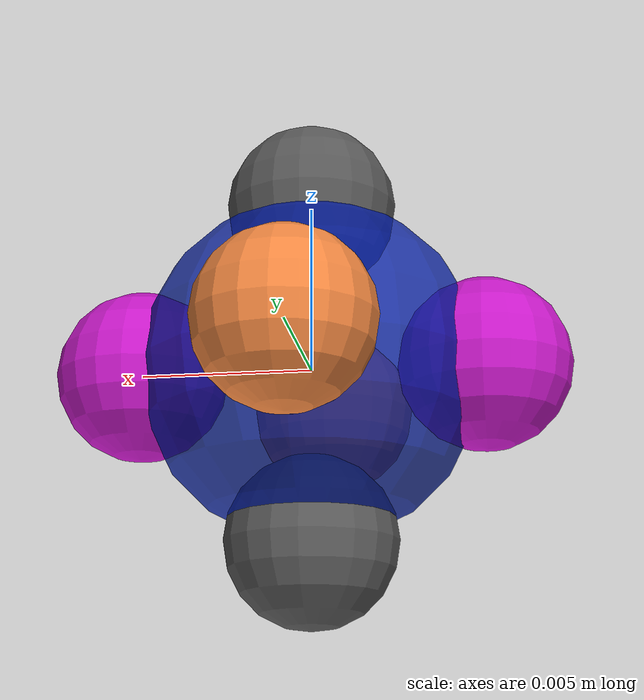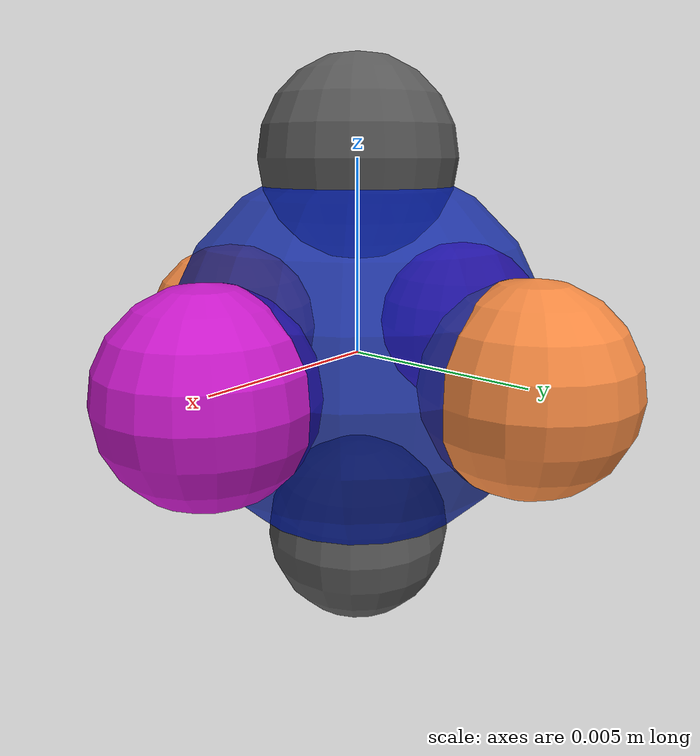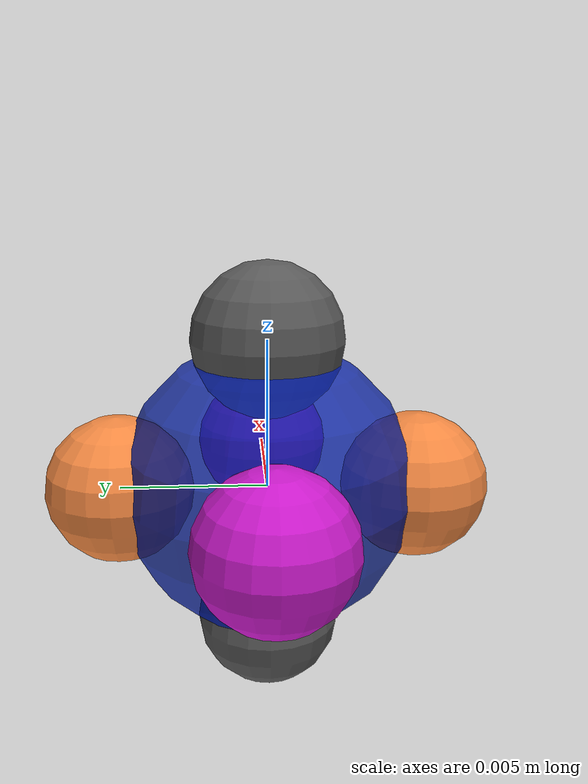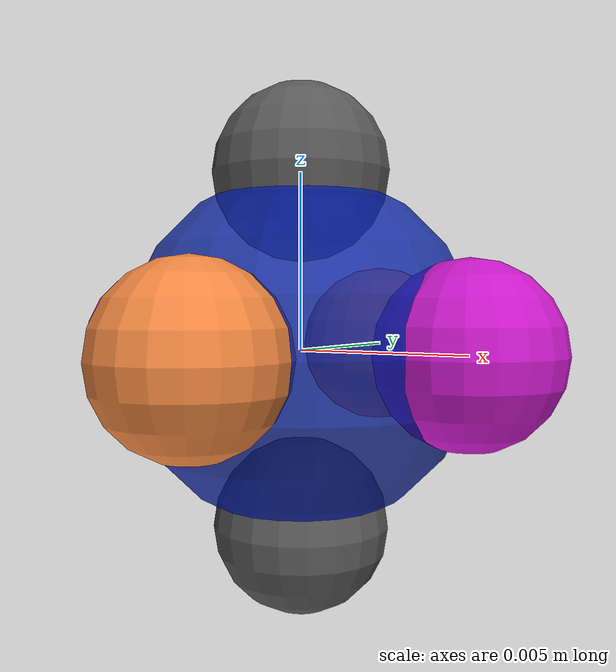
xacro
<?xml version="1.0"?>

<robot name="Core" xmlns:xacro="http://ros.org/wiki/xacro">
    <!-- Properties -->
    <!-- Colors -->
    <xacro:property name="Black" value="0.1 0.1 0.1 1" />
    <xacro:property name="Grey" value="0.35 0.35 0.35 1" />
    <xacro:property name="Orange" value=".9569 .5372 .2588 1" />
    <xacro:property name="Blue" value=".0157 .1176 .6588 0.8" />
    <xacro:property name="Maize" value=".9451 .7686 0 1" />
    <xacro:property name="LightGrey" value="0.75 0.75 0.75 1" />
    <xacro:property name="Red" value="0.8 0.1 0.1 1" />
    <xacro:property name="Green" value="0.1 0.8 0.1 1" />
    <xacro:property name="Purple" value="0.8 0.1 0.8 1" />
    <!-- Physical Properties -->
    <xacro:property name="CoreSize" value="0.005" />
    <xacro:property name="ConnectorSize" value="0.0025" />
    <xacro:property name="ConnectionDist" value="0.005" />

    <!-- Color Definitions-->
    <xacro:macro name="Mat" params="cname color">
        <material name="${cname}">
            <color rgba="${color}"/>
        </material>
    </xacro:macro>
    <xacro:Mat cname="Black" color="${Black}"/>
    <xacro:Mat cname="Grey" color="${Grey}"/>
    <xacro:Mat cname="Orange" color="${Orange}"/>
    <xacro:Mat cname="Blue" color="${Blue}"/>
    <xacro:Mat cname="Maize" color="${Maize}"/>
    <xacro:Mat cname="LightGrey" color="${LightGrey}"/>
    <xacro:Mat cname="Red" color="${Red}"/>
    <xacro:Mat cname="Green" color="${Green}"/>
    <xacro:Mat cname="Purple" color="${Purple}"/>

    <!-- Link Definitions-->
    <xacro:macro name="Core" params="cname color">
        <link name="Core">
            <visual>
                <origin xyz="0 0 0" rpy="0 0 0"/>
                <geometry>
                    <sphere radius="${CoreSize}"/>
                </geometry>
                <material name="${cname}">
                    <color rgba="${color}"/>
                </material>
            </visual>
            <collision>
                <origin xyz="0 0 0" rpy="0 0 0"/>
                <geometry>
                    <sphere radius="${CoreSize}"/>
                </geometry>
            </collision>
        </link>
    </xacro:macro>
    <xacro:macro name="Connector" params="id_num cname color">
        <link name="Connector_${id_num}">
            <visual>
                <origin xyz="0 0 0" rpy="0 0 0"/>
                <geometry>
                    <sphere radius="${ConnectorSize}"/>
                </geometry>
                <material name="${cname}">
                    <color rgba="${color}"/>
                </material>
            </visual>
            <collision>
                <origin xyz="0 0 0" rpy="0 0 0"/>
                <geometry>
                    <sphere radius="${ConnectorSize}"/>
                </geometry>
            </collision>
        </link>
    </xacro:macro>

    <!-- Joint Definitions -->
    <xacro:macro name="fixedJoint" params="parent child pos rot">
        <joint name="$fixed_${parent}_${child}" type="fixed">
            <origin xyz="${pos}" rpy="${rot}"/>
            <parent link="${parent}" />
            <child link="${child}" />
        </joint>
    </xacro:macro>

    <!-- Links -->
    <xacro:Core cname="Blue" color="${Blue}"/>
    <xacro:Connector id_num = "1" cname="Orange" color="${Orange}" />
    <xacro:Connector id_num = "2" cname="Orange" color="${Orange}" />
    <xacro:Connector id_num = "3" cname="Grey" color="${Grey}" />
    <xacro:Connector id_num = "4" cname="Grey" color="${Grey}" />
    <xacro:Connector id_num = "5" cname="Purple" color="${Purple}" />
    <xacro:Connector id_num = "6" cname="Purple" color="${Purple}" />

    <!-- Joints -->
    <xacro:fixedJoint parent="Core" child="Connector_1" pos="0 ${ConnectionDist} 0" rot="0 0 0" />
    <xacro:fixedJoint parent="Core" child="Connector_2" pos="0 -${ConnectionDist} 0" rot="0 0 0" />
    <xacro:fixedJoint parent="Core" child="Connector_3" pos="0 0 ${ConnectionDist}" rot="0 0 0" />
    <xacro:fixedJoint parent="Core" child="Connector_4" pos="0 0 -${ConnectionDist}" rot="0 0 0" />
    <xacro:fixedJoint parent="Core" child="Connector_5" pos="${ConnectionDist} 0 0" rot="0 0 0" />
    <xacro:fixedJoint parent="Core" child="Connector_6" pos="-${ConnectionDist} 0 0" rot="0 0 0" />

</robot>
